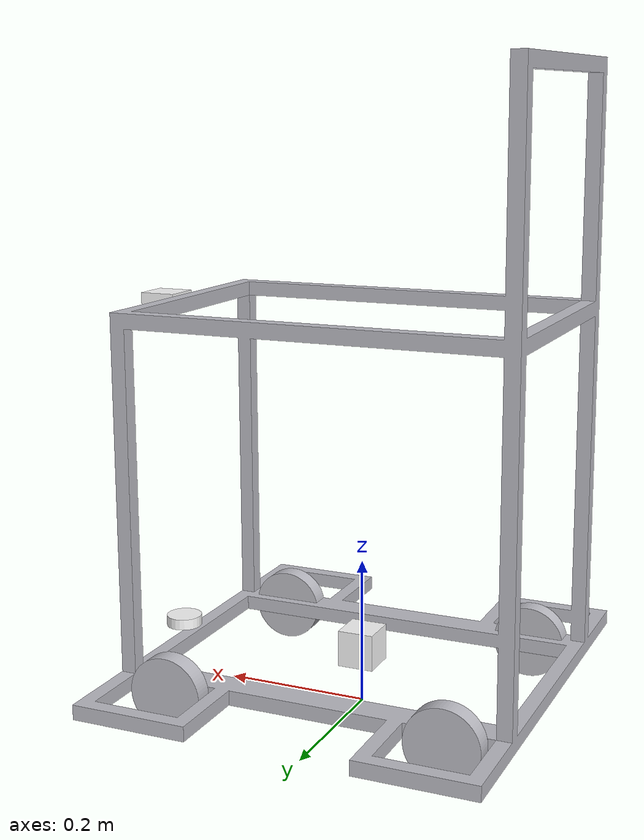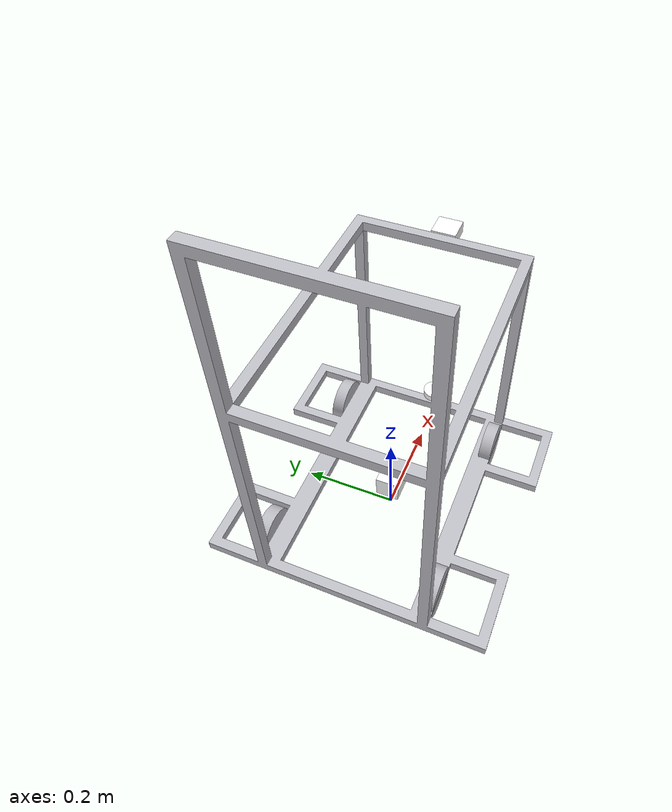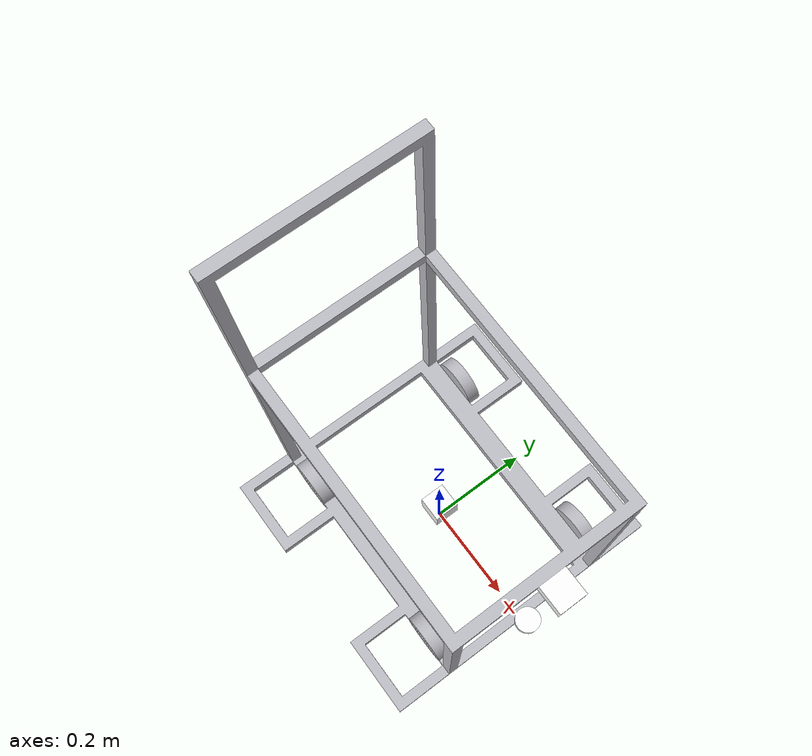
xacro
<?xml version="1.0" ?>
<robot name="urdf_base" xmlns:xacro="http://www.ros.org/wiki/xacro">

<xacro:include filename="$(find server_bot)/urdf/materials.xacro" />
<xacro:include filename="$(find server_bot)/urdf/urdf_base.gazebo" />
<link name="base_footprint"/>

<link name="base_link">
  <inertial>
    <origin xyz="-0.017964706437151683 7.958078640513123e-15 0.19692457662763105" rpy="0 0 0"/>
    <mass value="19.185824620104434"/>
    <inertia ixx="1.663084" iyy="1.844906" izz="1.439572" ixy="-0.0" iyz="0.0" ixz="0.192956"/>
  </inertial>
  <visual>
    <origin xyz="0 0 0" rpy="0 0 0"/>
    <geometry>
      <mesh filename="package://server_bot/meshes/base_link.stl" scale="0.001 0.001 0.001"/>
    </geometry>
    <material name="silver"/>
  </visual>
  <collision>
    <origin xyz="0 0 0" rpy="0 0 0"/>
    <geometry>
      <mesh filename="package://server_bot/meshes/base_link.stl" scale="0.001 0.001 0.001"/>
    </geometry>
  </collision>
</link>

<joint name="footprint_link_joint" type="fixed">
  <origin xyz="0 0 0" rpy="0 0 0"/>
  <parent link="base_footprint"/>
  <child link="base_link"/>
  <axis xyz="0 0 0"/>
</joint>

<link name="wheel_4_1">
  <inertial>
    <origin xyz="3.802513859341161e-15 0.012999999999998013 4.37983690357302e-07" rpy="0 0 0"/>
    <mass value="1.6029976514941926"/>
    <inertia ixx="0.001092" iyy="0.002004" izz="0.001092" ixy="0.0" iyz="0.0" ixz="0.0"/>
  </inertial>
  <visual>
    <origin xyz="-0.19 -0.18 -0.056794" rpy="0 0 0"/>
    <geometry>
      <mesh filename="package://server_bot/meshes/wheel_4_1.stl" scale="0.001 0.001 0.001"/>
    </geometry>
    <material name="silver"/>
  </visual>
  <collision>
    <origin xyz="-0.19 -0.18 -0.056794" rpy="0 0 0"/>
    <geometry>
      <mesh filename="package://server_bot/meshes/wheel_4_1.stl" scale="0.001 0.001 0.001"/>
    </geometry>
  </collision>
</link>

<link name="wheel_3_1">
  <inertial>
    <origin xyz="2.7478019859472624e-15 0.01300000000000262 4.379836985660135e-07" rpy="0 0 0"/>
    <mass value="1.6029976514941917"/>
    <inertia ixx="0.001092" iyy="0.002004" izz="0.001092" ixy="0.0" iyz="0.0" ixz="0.0"/>
  </inertial>
  <visual>
    <origin xyz="0.19 -0.18 -0.056794" rpy="0 0 0"/>
    <geometry>
      <mesh filename="package://server_bot/meshes/wheel_3_1.stl" scale="0.001 0.001 0.001"/>
    </geometry>
    <material name="silver"/>
  </visual>
  <collision>
    <origin xyz="0.19 -0.18 -0.056794" rpy="0 0 0"/>
    <geometry>
      <mesh filename="package://server_bot/meshes/wheel_3_1.stl" scale="0.001 0.001 0.001"/>
    </geometry>
  </collision>
</link>

<link name="wheel_1_1">
  <inertial>
    <origin xyz="-1.887379141862766e-15 -0.013000000000007145 4.379836994611308e-07" rpy="0 0 0"/>
    <mass value="1.6029976514941915"/>
    <inertia ixx="0.001092" iyy="0.002004" izz="0.001092" ixy="-0.0" iyz="0.0" ixz="-0.0"/>
  </inertial>
  <visual>
    <origin xyz="0.19 0.18 -0.056794" rpy="0 0 0"/>
    <geometry>
      <mesh filename="package://server_bot/meshes/wheel_1_1.stl" scale="0.001 0.001 0.001"/>
    </geometry>
    <material name="silver"/>
  </visual>
  <collision>
    <origin xyz="0.19 0.18 -0.056794" rpy="0 0 0"/>
    <geometry>
      <mesh filename="package://server_bot/meshes/wheel_1_1.stl" scale="0.001 0.001 0.001"/>
    </geometry>
  </collision>
</link>

<link name="wheel_2_1">
  <inertial>
    <origin xyz="-3.3306690738754696e-16 -0.013000000000003176 4.379836911760915e-07" rpy="0 0 0"/>
    <mass value="1.6029976514941926"/>
    <inertia ixx="0.001092" iyy="0.002004" izz="0.001092" ixy="0.0" iyz="0.0" ixz="-0.0"/>
  </inertial>
  <visual>
    <origin xyz="-0.19 0.18 -0.056794" rpy="0 0 0"/>
    <geometry>
      <mesh filename="package://server_bot/meshes/wheel_2_1.stl" scale="0.001 0.001 0.001"/>
    </geometry>
    <material name="silver"/>
  </visual>
  <collision>
    <origin xyz="-0.19 0.18 -0.056794" rpy="0 0 0"/>
    <geometry>
      <mesh filename="package://server_bot/meshes/wheel_2_1.stl" scale="0.001 0.001 0.001"/>
    </geometry>
  </collision>
</link>

<link name="camera">
  <inertial>
          <mass value="0.1" />
          <inertia ixx="0.01" ixy="0.0" ixz="0"
          iyy="0.01" iyz="0" izz="0.01" />
  </inertial>

  <visual>
    <geometry>
      <box size="0.05 0.05 0.025"/>
    </geometry>
    <material name="white">
      <color rgba="1 1 1 1"/>
    </material>
  </visual>

  <collision>
    <geometry>
        <box size="0.05 0.05 0.025"/>
    </geometry>
  </collision>
</link>

<link name="lidar">
  <inertial>
          <mass value="0.5" />
          <inertia ixx="0.01" ixy="0.0" ixz="0"
          iyy="0.01" iyz="0" izz="0.01" />
  </inertial>
  <visual>
    <geometry>
      <cylinder radius="0.025" length="0.015"/>
    </geometry>
    <material name="white">
      <color rgba="1 1 1 1"/>
    </material>
  </visual>

  <collision>
    <geometry>
        <box size="0.1 0.1 0.1"/>
    </geometry>
  </collision>
</link>

<link name="imu_link">
  <inertial>
    <mass value="0.3"/>
    <inertia ixx="0.01" ixy="0.0" ixz="0"
        iyy="0.01" iyz="0" izz="0.01" />
  </inertial>
  <visual>
    <geometry>
      <box size="0.05 0.05 0.05"/>
    </geometry>
    <material name="white">
      <color rgba="1 1 1 1"/>
    </material>
  </visual>
  <collision>
    <geometry>
        <box size="0.01 0.01 0.005"/>
    </geometry>
  </collision>

</link>

<joint name="Revolute 13" type="continuous">
  <origin xyz="0.19 0.18 0.056794" rpy="0 0 0"/>
  <parent link="base_link"/>
  <child link="wheel_4_1"/>
  <axis xyz="0.0 1.0 0.0"/>
</joint>

<joint name="Revolute 14" type="continuous">
  <origin xyz="-0.19 0.18 0.056794" rpy="0 0 0"/>
  <parent link="base_link"/>
  <child link="wheel_3_1"/>
  <axis xyz="0.0 1.0 0.0"/>
</joint>

<joint name="Revolute 15" type="continuous">
  <origin xyz="-0.19 -0.18 0.056794" rpy="3.14 0 0"/>
  <parent link="base_link"/>
  <child link="wheel_1_1"/>
  <axis xyz="-0.0 -1.0 -0.0"/>
</joint>

<joint name="Revolute 16" type="continuous">
  <origin xyz="0.19 -0.18 0.056794" rpy="3.14 0 0"/>
  <parent link="base_link"/>
  <child link="wheel_2_1"/>
  <axis xyz="-0.0 -1.0 -0.0"/>
</joint>

<joint name="camera_joint" type="fixed">
  <origin xyz="0.295 0 0.54" rpy="0 0.0 0"/>
  <parent link="base_link"/>
  <child link="camera"/>
  <axis xyz="0.0 0.0 1.0"/>
</joint>

<joint name="lidar_joint" type="fixed">
<origin xyz="0.280 0 0.075" rpy="0 0.0 -1.57"/>
<parent link="base_link"/>
<child link="lidar"/>
<axis xyz="0.0 0.0 1.0"/>
</joint>

<joint name="imu_joint" type="fixed">
<origin xyz="0 0 0.08"/>
<parent link="base_link"/>
<child link="imu_link"/>
<axis xyz="0.0 0.0 1.0"/>

</joint>

<gazebo reference="lidar">
  <material>Gazebo/Blue</material>
</gazebo>

<gazebo reference="camera">
  <material>Gazebo/Red</material>
</gazebo>

<gazebo reference="camera">
<sensor type="camera" name="camera1">
  <visualize>false</visualize>
  <update_rate>30.0</update_rate>
  <camera name="head">
    <horizontal_fov>1.3962634</horizontal_fov>
    <image>
      <width>800</width>
      <height>800</height>
      <format>R8G8B8</format>
    </image>
    <clip>
      <near>0.02</near>
      <far>300</far>
    </clip>
  </camera>
  <plugin name="camera_controller" filename="libgazebo_ros_camera.so">
    <alwaysOn>true</alwaysOn>
    <updateRate>60.0</updateRate>
    <cameraName>/camera1</cameraName>
    <imageTopicName>image_raw</imageTopicName>
    <cameraInfoTopicName>info_camera</cameraInfoTopicName>
    <frameName>camera</frameName>1.57
    <hackBaseline>0.07</hackBaseline>
  </plugin>
</sensor>
</gazebo>

<gazebo reference="lidar">
<sensor name="lidar" type="ray">
  <always_on>true</always_on>
  <visualize>true</visualize>
  <update_rate>30.0</update_rate>
  <plugin filename="libgazebo_ros_laser.so" name="scan">
    <topicName>/lidar_topic</topicName>
    <outputType>sensor_msgs/LaserScan</outputType>
    <frameName>lidar</frameName>
  </plugin>
  <ray>
    <scan>
      <horizontal>
        <samples>720</samples>
        <resolution>1</resolution>
        <min_angle>0.0872</min_angle> <!--for pi/6 or 30 deg-->
        <max_angle>3.0543</max_angle> <!--3.1416*2 for full 360; 2.0944 for 120 deg; for 150 deg 2.618-->
      </horizontal>
    </scan>
    <range>
      <min>0.08</min>
      <max>6</max>
      <resolution>0.015</resolution>
    </range>
  </ray>
</sensor>
</gazebo>

<gazebo>
<plugin name="skid_steer_drive_controller" filename="libgazebo_ros_skid_steer_drive.so">
  <updateRate>15.0</updateRate>
  <robotNamespace>/</robotNamespace>
  <rightFrontJoint>Revolute 16</rightFrontJoint>
  <leftFrontJoint>Revolute 13</leftFrontJoint>
  <rightRearJoint>Revolute 15</rightRearJoint>
  <leftRearJoint>Revolute 14</leftRearJoint>
  <wheelSeparation>0.4</wheelSeparation>
  <wheelDiameter>0.215</wheelDiameter>
  <robotBaseFrame>base_footprint</robotBaseFrame>
  <torque>40</torque>
  <topicName>cmd_vel</topicName>
  <broadcastTF>true</broadcastTF>
  <publishOdomTF>true</publishOdomTF>
  <publishOdom>true</publishOdom>

</plugin>

</gazebo>

<gazebo reference="imu_link">
<gravity>true</gravity>
<sensor name="imu_sensor" type="imu">
<imu>
    <angular_velocity>
      <x>
        <noise type="gaussian">
          <mean>0.0</mean>
          <stddev>2e-4</stddev>
          <bias_mean>0.0000075</bias_mean>
          <bias_stddev>0.0000008</bias_stddev>
        </noise>
      </x>
      <y>
        <noise type="gaussian">
          <mean>0.0</mean>
          <stddev>2e-4</stddev>
          <bias_mean>0.0000075</bias_mean>
          <bias_stddev>0.0000008</bias_stddev>
        </noise>
      </y>
      <z>
        <noise type="gaussian">
          <mean>0.0</mean>
          <stddev>2e-4</stddev>
          <bias_mean>0.0000075</bias_mean>
          <bias_stddev>0.0000008</bias_stddev>
        </noise>
      </z>
    </angular_velocity>
    <linear_acceleration>
      <x>
        <noise type="gaussian">
          <mean>0.0</mean>
          <stddev>1.7e-2</stddev>
          <bias_mean>0.1</bias_mean>
          <bias_stddev>0.001</bias_stddev>
        </noise>
      </x>
      <y>
        <noise type="gaussian">
          <mean>0.0</mean>
          <stddev>1.7e-2</stddev>
          <bias_mean>0.1</bias_mean>
          <bias_stddev>0.001</bias_stddev>
        </noise>
      </y>
      <z>
        <noise type="gaussian">
          <mean>0.0</mean>
          <stddev>1.7e-2</stddev>
          <bias_mean>0.1</bias_mean>
          <bias_stddev>0.001</bias_stddev>
        </noise>
      </z>
    </linear_acceleration>
  </imu>
<always_on>true</always_on>
  <update_rate>100</update_rate>
  <visualize>true</visualize>
  <topic>imu</topic>
  <plugin filename="libgazebo_ros_imu_sensor.so" name="imu_plugin">
    <topicName>imu</topicName>
    <bodyName>imu_link</bodyName>
    <updateRateHZ>10.0</updateRateHZ>
    <gaussianNoise>0.0</gaussianNoise>
    <xyzOffset>0 0 0</xyzOffset>
    <rpyOffset>0 0 0</rpyOffset>
    <frameName>imu_link</frameName>
    <initial_orientation_as_reference>true</initial_orientation_as_reference>
  </plugin>
  <pose>0 0 0 0 0 0</pose>
</sensor>
</gazebo>

</robot>

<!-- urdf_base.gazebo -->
<robot name="urdf_base" xmlns:xacro="http://www.ros.org/wiki/xacro" >

<xacro:property name="body_color" value="Gazebo/Silver" />

<gazebo>
  <plugin name="control" filename="libgazebo_ros_control.so"/>
</gazebo>
<gazebo reference="base_link">
  <material>${body_color}</material>
  <mu1>0.2</mu1>
  <mu2>0.2</mu2>
  <selfCollide>true</selfCollide>
  <gravity>true</gravity>
</gazebo>

<gazebo reference="wheel_4_1">
  <material>${body_color}</material>
  <mu1>0.2</mu1>
  <mu2>0.2</mu2>
  <selfCollide>true</selfCollide>
</gazebo>

<gazebo reference="wheel_3_1">
  <material>${body_color}</material>
  <mu1>0.2</mu1>
  <mu2>0.2</mu2>
  <selfCollide>true</selfCollide>
</gazebo>

<gazebo reference="wheel_1_1">
  <material>${body_color}</material>
  <mu1>0.2</mu1>
  <mu2>0.2</mu2>
  <selfCollide>true</selfCollide>
</gazebo>

<gazebo reference="wheel_2_1">
  <material>${body_color}</material>
  <mu1>0.2</mu1>
  <mu2>0.2</mu2>
  <selfCollide>true</selfCollide>
</gazebo>

</robot>
